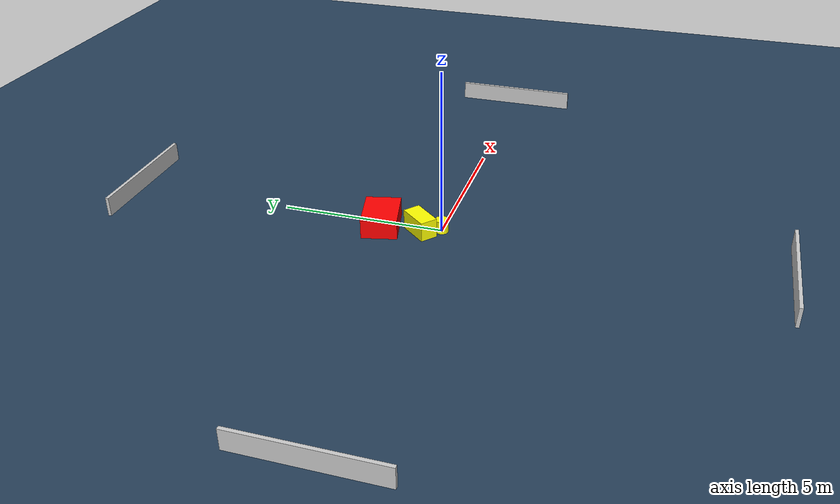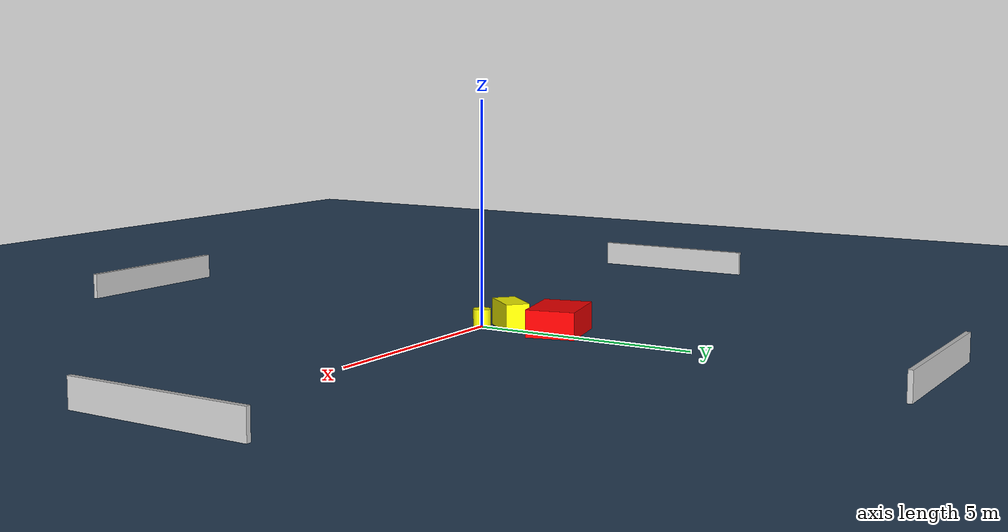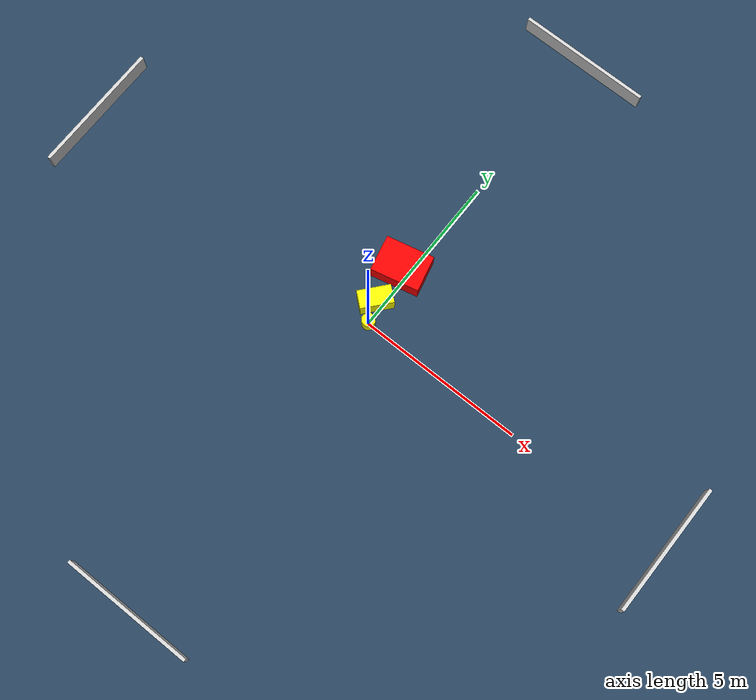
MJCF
<?xml version="1.0" ?>
<mujoco model="generated_environment">
  <option timestep="0.01" integrator="RK4" cone="elliptic"/>
  <default>
    <geom density="1"/>
  </default>
  <asset>
    <texture builtin="gradient" height="3072" name="skybox" rgb1="0.3 0.5 0.7" rgb2="0 0 0" type="skybox" width="512"/>
    <texture builtin="checker" height="300" name="groundplane" rgb1="0.2 0.3 0.4" rgb2="0.1 0.2 0.3" type="2d" width="300"/>
    <material name="groundplane" reflectance="0.2" texrepeat="5 5" texture="groundplane"/>
  </asset>
  <worldbody>
    <light dir="0 0 -1" directional="true" pos="0 0 1.5"/>
    <geom condim="3" friction="0.5 0.005 0.001" material="groundplane" name="floor" pos="0 0 0" size="0 0 0.05" type="plane"/>
    <body name="walls">
      <geom name="wall_1" condim="4" pos="-10.0 0.0 0.3" rgba="0.800000011920929 0.800000011920929 0.800000011920929 1.0" size="0.05 2.0 0.3" type="box"/>
      <geom name="wall_2" condim="4" pos="10.0 0.0 0.3" rgba="0.800000011920929 0.800000011920929 0.800000011920929 1.0" size="0.05 2.0 0.3" type="box"/>
      <geom name="wall_3" condim="4" pos="0.0 -10.0 0.3" rgba="0.800000011920929 0.800000011920929 0.800000011920929 1.0" size="2.0 0.05 0.3" type="box"/>
      <geom name="wall_4" condim="4" pos="0.0 10.0 0.3" rgba="0.800000011920929 0.800000011920929 0.800000011920929 1.0" size="2.0 0.05 0.3" type="box"/>
    </body>
    <body name="robot">
      <joint name="joint_x" type="slide" pos="0 0 0" axis="1 0 0"/>
      <joint name="joint_y" type="slide" pos="0 0 0" axis="0 1 0"/>
      <geom name="robot" type="cylinder" pos="0.0 0.0 0.2" size="0.2 0.2 0.0" mass="5.0" friction="1.0 0.005 0.0001" condim="4" rgba="1.0 1.0 0.0 1.0"/>
    </body>
    <body name="obstacle_1_movable">
      <geom name="obstacle_1_movable" condim="4" pos="-0.23394170793564156 0.6016797294241144 0.3" euler="0 0 49.6333504497394" friction="0.0 0.005 0.001" rgba="1.0 1.0 0.0 1.0" size="0.48720294805005915 0.26565236353762345 0.3" type="box" mass="0.1"/>
      <joint type="free"/>
    </body>
    <body name="obstacle_2_static">
      <geom name="obstacle_2_static" condim="4" pos="-0.24728860285743903 1.812189190234054 0.3" euler="0 0 13.077789360820887" friction="0.0 0.005 0.001" rgba="1.0 0.0 0.0 1.0" size="0.7206876087856222 0.5370398082350185 0.3" type="box"/>
    </body>
  </worldbody>
  <actuator>
    <motor name="actuator_x" joint="joint_x" gear="1" ctrlrange="-1 1"/>
    <motor name="actuator_y" joint="joint_y" gear="1" ctrlrange="-1 1"/>
  </actuator>
</mujoco>
